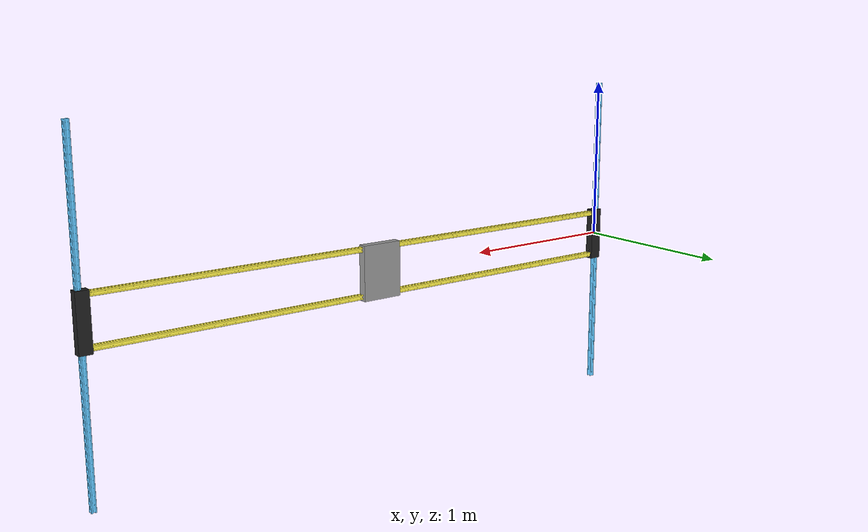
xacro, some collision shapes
<?xml version="1.0"?>
<robot name="DSRbot" xmlns:xacro="http://www.ros.org/wiki/xacro">
<xacro:include filename="$(find dsrbot_description)/urdf/DSRbot.gazebo" />

  <link name="placeholder_base"/>

  <link name="base1_link">
		<visual>
		    <origin xyz="0.04 0.1 0.945" rpy="1.5708 0 0"/>
			<geometry>
				<mesh filename="$(find dsrbot_description)/meshes/rieles_verticales.STL" scale="0.001 0.001 0.001"/>
			</geometry>
		</visual>
		<collision>
		      <origin xyz="1.765 0 0" rpy="0 0 0"/>
		      <geometry>
			<box size="3.53 0.1 2"/>
		      </geometry>
		    </collision>
		        <inertial>
			      <origin xyz="1.765 0 0" rpy="0 0 0"/>
			      <mass value="2"/>
			      <inertia ixx="1" ixy="0" ixz="0"
				       iyy="1" iyz="0"
				       izz="1" />
			    </inertial>
	</link>
  <link name="soporte1_link">
		<visual>
		    <origin xyz="0.04 0.1 1.78175" rpy="1.5708 0 0"/>
			<geometry>
				<mesh filename="$(find dsrbot_description)/meshes/soportes_verticales.STL" scale="0.001 0.001 0.001"/>
			</geometry>
		</visual>
		<collision>
		    <origin xyz="0.01045 0 0" rpy="0 0 0"/>
		      <geometry>
			<box size="0.075 0.05 0.33"/>
		      </geometry>
        </collision>
		        <inertial>
			      <origin xyz="0.01045 0 0" rpy="0 0 0"/>
			      <mass value="0.1"/>
			      <inertia ixx="1" ixy="0" ixz="0"
				       iyy="1" iyz="0"
				       izz="1" />
			    </inertial>
	</link>
   <link name="riel1_link">
		<visual>
		    <origin xyz="0.045 0.9412 0.015" rpy="0 0 0"/>
			<geometry>
				<mesh filename="$(find dsrbot_description)/meshes/rieles_horizontales.STL" scale="0.001 0.001 0.001"/>
			</geometry>
		</visual>
						<collision>
		      <origin xyz="1.7575 0 0.14" rpy="0 0 0"/>
		      <geometry>
			<box size="3.5 0.03 0.03"/>
		      </geometry>
		    </collision>
		        <inertial>
			      <origin xyz="1.7575 0 0.14" rpy="0 0 0"/>
			      <mass value="1"/>
			      <inertia ixx="1.4e-03" ixy="0" ixz="0"
				       iyy="1.4e-03" iyz="0"
				       izz="2.695e-03" />
			    </inertial>
	</link>
   <link name="carrier_link">
		<visual>
		    <origin xyz="1.5975 0.1 0.7485" rpy="1.5708 0 0"/>
			<geometry>
                <mesh filename="$(find dsrbot_description)/meshes/carrier_assy.STL" scale="0.001 0.001 0.001"/>
			</geometry>
		</visual>
		<collision>
		    <origin xyz="1.75 0 0" rpy="0 0 0"/>
		    <geometry>
			<box size="0.25 0.05 0.33"/>
		    </geometry>
	    </collision>
		        <inertial>
			      <origin xyz="1.75 0 0" rpy="0 0 0"/>
			      <mass value="0.1"/>
			      <inertia ixx="1.4e-03" ixy="0" ixz="0"
				       iyy="1.4e-03" iyz="0"
				       izz="2.695e-03" />
			    </inertial>
	</link>
<joint name="base_joint" type="fixed">
    <origin xyz="0 0 0" rpy="0 0 0"/>
    <parent link="placeholder_base"/>
    <child link="base1_link"/>
</joint>
<joint name="soporte1_joint" type="prismatic">
    <origin xyz="0 0 0" rpy="0 0 0"/>
    <parent link="base1_link"/>
    <child link="soporte1_link"/>
    <axis xyz="0 0 1"/>
    <limit upper="0.99" lower="-0.83" velocity="1" effort="100"/>
  </joint>
<joint name="riel1_joint" type="fixed">
    <origin xyz="0 0 0" rpy="0 0 0"/>
    <parent link="soporte1_link"/>
    <child link="riel1_link"/>
  </joint>
<joint name="carrier_joint" type="prismatic">
    <origin xyz="0 0 0" rpy="0 0 0"/>
    <parent link="riel1_link"/>
    <child link="carrier_link"/>
    <axis xyz="1 0 0"/>
    <limit upper="1.61" lower="-1.575" velocity="1" effort="100"/>
  </joint>

  <transmission name="t1">
    <type>transmission_interface/SimpleTransmission</type>
    <joint name="soporte1_joint">
	<hardwareInterface>hardware_interface/EffortJointInterface</hardwareInterface>
    </joint>
    <actuator name="motor1">
      <hardwareInterface>hardware_interface/EffortJointInterface</hardwareInterface>
      <mechanicalReduction>10</mechanicalReduction>
    </actuator>
  </transmission>

  <transmission name="t2">
    <type>transmission_interface/SimpleTransmission</type>
    <joint name="carrier_joint">
	<hardwareInterface>hardware_interface/EffortJointInterface</hardwareInterface>
    </joint>
    <actuator name="motor2">
      <hardwareInterface>hardware_interface/EffortJointInterface</hardwareInterface>
      <mechanicalReduction>10</mechanicalReduction>
    </actuator>
  </transmission>

</robot>
